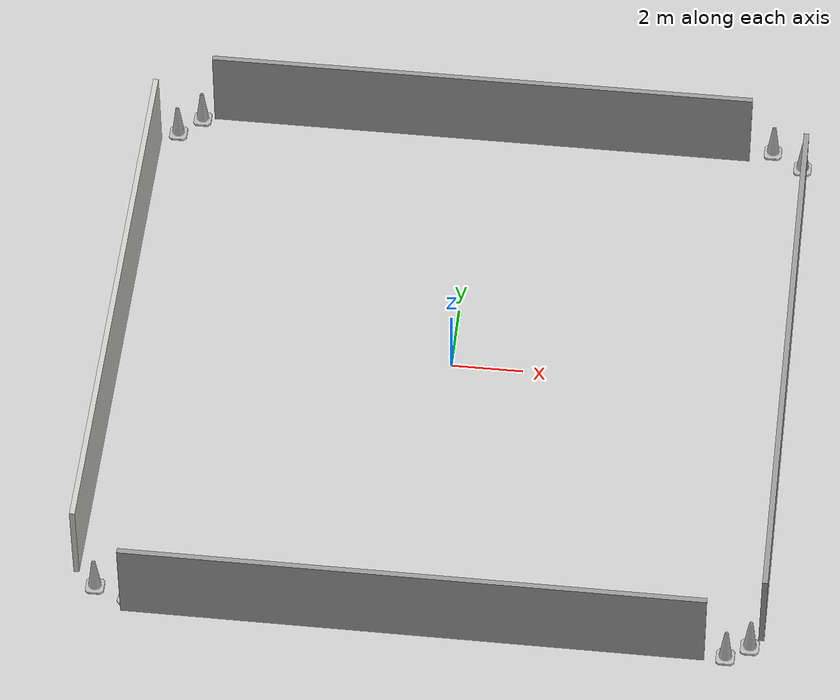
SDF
<sdf version="1.6">
 <world name="default">
  <light name="sun" type="directional">
   <pose>0 0 10 0 -0 0</pose>
   <diffuse>0.8 0.8 0.8 1</diffuse>
   <specular>0.2 0.2 0.2 1</specular>
   <attenuation>
    <range>1000</range>
    <constant>0.9</constant>
    <linear>0.01</linear>
    <quadratic>0.001</quadratic>
   </attenuation>
   <direction>-0.5 0.1 -0.9</direction>
  </light>
  <model name="ground_plane">
   <static>1</static>
   <link name="link">
    <collision name="collision">
     <geometry><plane><normal>0 0 1</normal><size>100 100</size></plane></geometry>
     <surface><friction><ode><mu>100</mu><mu2>50</mu2></ode></friction></surface>
    </collision>
    <visual name="visual">
     <cast_shadows>0</cast_shadows>
     <geometry><plane><normal>0 0 1</normal><size>100 100</size></plane></geometry>
     <material>
      <script><uri>file://media/materials/scripts/gazebo.material</uri><name>Gazebo/Grey</name></script>
     </material>
    </visual>
   </link>
  </model>
  <gravity>0 0 -9.8</gravity>
  <magnetic_field>6e-06 2.3e-05 -4.2e-05</magnetic_field>
  <atmosphere type="adiabatic"/>
  <physics name="default_physics" default="0" type="ode">
   <max_step_size>0.001</max_step_size>
   <real_time_factor>1</real_time_factor>
   <real_time_update_rate>1000</real_time_update_rate>
  </physics>
  <scene><ambient>0.4 0.4 0.4 1</ambient><background>0.7 0.7 0.7 1</background><shadows>1</shadows></scene>
  <audio><device>default</device></audio>
  <spherical_coordinates>
   <surface_model>EARTH_WGS84</surface_model>
   <latitude_deg>0</latitude_deg>
   <longitude_deg>0</longitude_deg>
   <elevation>0</elevation>
   <heading_deg>0</heading_deg>
  </spherical_coordinates>
  <model name="robo_woeld">
   <pose>-0.010568 -0.417618 0 0 -0 0</pose>
   <link name="Wall_1">
    <collision name="Wall_1_Collision">
     <geometry><box><size>15.75 0.15 2.5</size></box></geometry>
     <pose>0 0 1.25 0 -0 0</pose>
    </collision>
    <visual name="Wall_1_Visual">
     <pose>0 0 1.25 0 -0 0</pose>
     <geometry><box><size>15.75 0.15 2.5</size></box></geometry>
     <material>
      <script><uri>file://media/materials/scripts/gazebo.material</uri><name>Gazebo/Grey</name></script>
      <ambient>1 1 1 1</ambient>
     </material>
     <meta><layer>0</layer></meta>
    </visual>
    <pose>-0.056235 -9.05941 0 0 -0 0</pose>
   </link>
   <link name="Wall_4">
    <collision name="Wall_4_Collision">
     <geometry><box><size>16.25 0.15 2.5</size></box></geometry>
     <pose>0 0 1.25 0 -0 0</pose>
    </collision>
    <visual name="Wall_4_Visual">
     <pose>0 0 1.25 0 -0 0</pose>
     <geometry><box><size>16.25 0.15 2.5</size></box></geometry>
     <material>
      <script><uri>file://media/materials/scripts/gazebo.material</uri><name>Gazebo/Grey</name></script>
      <ambient>1 1 1 1</ambient>
     </material>
     <meta><layer>0</layer></meta>
    </visual>
    <pose>9.30236 -0.195301 0 0 -0 1.5708</pose>
   </link>
   <link name="Wall_6">
    <collision name="Wall_6_Collision">
     <geometry><box><size>16 0.15 2.5</size></box></geometry>
     <pose>0 0 1.25 0 -0 0</pose>
    </collision>
    <visual name="Wall_6_Visual">
     <pose>0 0 1.25 0 -0 0</pose>
     <geometry><box><size>16 0.15 2.5</size></box></geometry>
     <material>
      <script><uri>file://media/materials/scripts/gazebo.material</uri><name>Gazebo/CeilingTiled</name></script>
      <ambient>1 1 1 1</ambient>
     </material>
     <meta><layer>0</layer></meta>
    </visual>
    <pose>-9.30236 0.048279 0 0 -0 -1.5708</pose>
   </link>
   <link name="Wall_9">
    <collision name="Wall_9_Collision">
     <geometry><box><size>15.5 0.15 2.5</size></box></geometry>
     <pose>0 0 1.25 0 -0 0</pose>
    </collision>
    <visual name="Wall_9_Visual">
     <pose>0 0 1.25 0 -0 0</pose>
     <geometry><box><size>15.5 0.15 2.5</size></box></geometry>
     <material>
      <script><uri>file://media/materials/scripts/gazebo.material</uri><name>Gazebo/Grey</name></script>
      <ambient>1 1 1 1</ambient>
     </material>
     <meta><layer>0</layer></meta>
    </visual>
    <pose>-0.058498 9.05941 0 0 -0 0</pose>
   </link>
   <static>1</static>
  </model>
  <model name="Construction Cone">
   <link name="link">
    <collision name="collision">
     <geometry>
      <mesh><scale>10 10 10</scale><uri>model://construction_cone/meshes/construction_cone.dae</uri></mesh>
     </geometry>
    </collision>
    <visual name="visual">
     <geometry>
      <mesh><scale>10 10 10</scale><uri>model://construction_cone/meshes/construction_cone.dae</uri></mesh>
     </geometry>
    </visual>
    <inertial>
     <inertia><ixx>1</ixx><ixy>0</ixy><ixz>0</ixz><iyy>1</iyy><iyz>0</iyz><izz>1</izz></inertia>
     <mass>1</mass>
    </inertial>
   </link>
   <pose>-8.77984 7.85815 -0 0 -0 0</pose>
  </model>
  <model name="Construction Cone_clone">
   <link name="link">
    <collision name="collision">
     <geometry>
      <mesh><scale>10 10 10</scale><uri>model://construction_cone/meshes/construction_cone.dae</uri></mesh>
     </geometry>
    </collision>
    <visual name="visual">
     <geometry>
      <mesh><scale>10 10 10</scale><uri>model://construction_cone/meshes/construction_cone.dae</uri></mesh>
     </geometry>
    </visual>
    <inertial>
     <inertia><ixx>1</ixx><ixy>0</ixy><ixz>0</ixz><iyy>1</iyy><iyz>0</iyz><izz>1</izz></inertia>
     <mass>1</mass>
    </inertial>
   </link>
   <pose>-8.15667 8.4822 -1e-05 -1e-06 0 0</pose>
  </model>
  <model name="Construction Cone_clone_0">
   <link name="link">
    <collision name="collision">
     <geometry>
      <mesh><scale>10 10 10</scale><uri>model://construction_cone/meshes/construction_cone.dae</uri></mesh>
     </geometry>
    </collision>
    <visual name="visual">
     <geometry>
      <mesh><scale>10 10 10</scale><uri>model://construction_cone/meshes/construction_cone.dae</uri></mesh>
     </geometry>
    </visual>
    <inertial>
     <inertia><ixx>1</ixx><ixy>0</ixy><ixz>0</ixz><iyy>1</iyy><iyz>0</iyz><izz>1</izz></inertia>
     <mass>1</mass>
    </inertial>
   </link>
   <pose>-7.80751 -9.12889 -0 -0 -1e-06 -0.110986</pose>
  </model>
  <model name="Construction Cone_clone_1">
   <link name="link">
    <collision name="collision">
     <geometry>
      <mesh><scale>10 10 10</scale><uri>model://construction_cone/meshes/construction_cone.dae</uri></mesh>
     </geometry>
    </collision>
    <visual name="visual">
     <geometry>
      <mesh><scale>10 10 10</scale><uri>model://construction_cone/meshes/construction_cone.dae</uri></mesh>
     </geometry>
    </visual>
    <inertial>
     <inertia><ixx>1</ixx><ixy>0</ixy><ixz>0</ixz><iyy>1</iyy><iyz>0</iyz><izz>1</izz></inertia>
     <mass>1</mass>
    </inertial>
   </link>
   <pose>-8.73348 -8.83382 -0 0 -0 0</pose>
  </model>
  <model name="Construction Cone_clone_2">
   <link name="link">
    <collision name="collision">
     <geometry>
      <mesh><scale>10 10 10</scale><uri>model://construction_cone/meshes/construction_cone.dae</uri></mesh>
     </geometry>
    </collision>
    <visual name="visual">
     <geometry>
      <mesh><scale>10 10 10</scale><uri>model://construction_cone/meshes/construction_cone.dae</uri></mesh>
     </geometry>
    </visual>
    <inertial>
     <inertia><ixx>1</ixx><ixy>0</ixy><ixz>0</ixz><iyy>1</iyy><iyz>0</iyz><izz>1</izz></inertia>
     <mass>1</mass>
    </inertial>
   </link>
   <pose>8.34278 8.92477 -0 0 -1e-06 0</pose>
  </model>
  <model name="Construction Cone_clone_3">
   <link name="link">
    <collision name="collision">
     <geometry>
      <mesh><scale>10 10 10</scale><uri>model://construction_cone/meshes/construction_cone.dae</uri></mesh>
     </geometry>
    </collision>
    <visual name="visual">
     <geometry>
      <mesh><scale>10 10 10</scale><uri>model://construction_cone/meshes/construction_cone.dae</uri></mesh>
     </geometry>
    </visual>
    <inertial>
     <inertia><ixx>1</ixx><ixy>0</ixy><ixz>0</ixz><iyy>1</iyy><iyz>0</iyz><izz>1</izz></inertia>
     <mass>1</mass>
    </inertial>
   </link>
   <pose>9.23051 8.39242 -0 -0 -0 -0</pose>
  </model>
  <model name="Construction Cone_clone_4">
   <link name="link">
    <collision name="collision">
     <geometry>
      <mesh><scale>10 10 10</scale><uri>model://construction_cone/meshes/construction_cone.dae</uri></mesh>
     </geometry>
    </collision>
    <visual name="visual">
     <geometry>
      <mesh><scale>10 10 10</scale><uri>model://construction_cone/meshes/construction_cone.dae</uri></mesh>
     </geometry>
    </visual>
    <inertial>
     <inertia><ixx>1</ixx><ixy>0</ixy><ixz>0</ixz><iyy>1</iyy><iyz>0</iyz><izz>1</izz></inertia>
     <mass>1</mass>
    </inertial>
   </link>
   <pose>8.37481 -9.41942 -0 0 -0 0</pose>
  </model>
  <model name="Construction Cone_clone_5">
   <link name="link">
    <collision name="collision">
     <geometry>
      <mesh><scale>10 10 10</scale><uri>model://construction_cone/meshes/construction_cone.dae</uri></mesh>
     </geometry>
    </collision>
    <visual name="visual">
     <geometry>
      <mesh><scale>10 10 10</scale><uri>model://construction_cone/meshes/construction_cone.dae</uri></mesh>
     </geometry>
    </visual>
    <inertial>
     <inertia><ixx>1</ixx><ixy>0</ixy><ixz>0</ixz><iyy>1</iyy><iyz>0</iyz><izz>1</izz></inertia>
     <mass>1</mass>
    </inertial>
   </link>
   <pose>9.00069 -9.01351 -0 0 -1e-06 0</pose>
  </model>
 </world>
</sdf>
